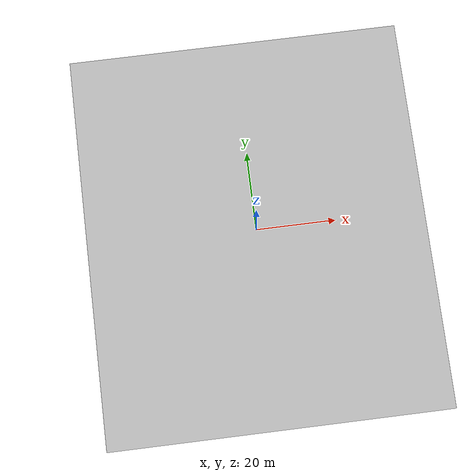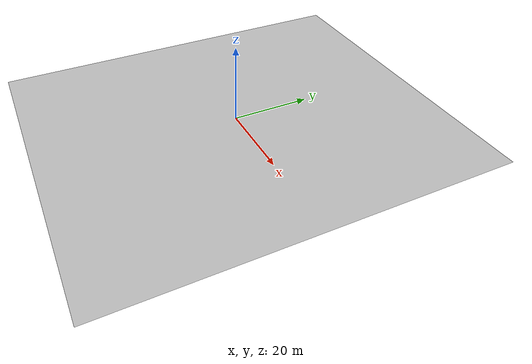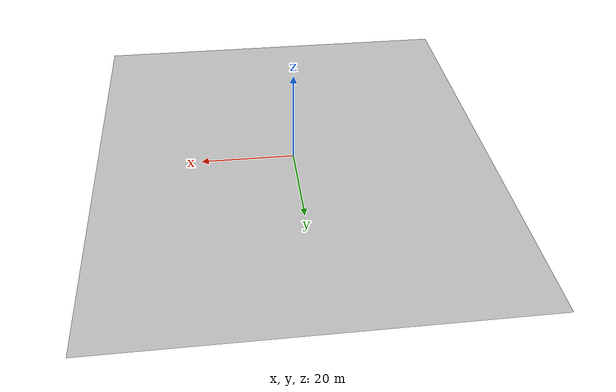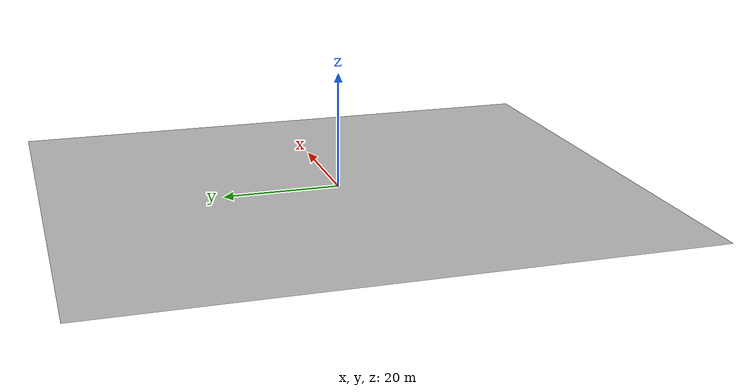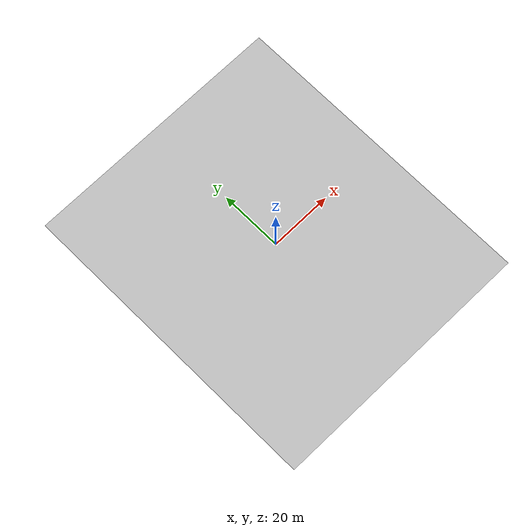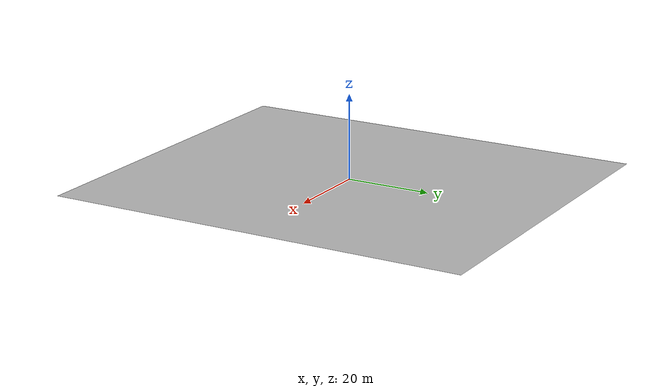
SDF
<?xml version="1.0" ?>
<sdf version="1.6" xmlns:xacro="http://www.ros.org/wiki/xacro">
	<world name="default">
    		<spherical_coordinates>
      			<surface_model>EARTH_WGS84</surface_model>
      			<world_frame_orientation>ENU</world_frame_orientation>
      			<latitude_deg>42.67</latitude_deg>
      			<longitude_deg>-83.22</longitude_deg>
      			<elevation>0</elevation>
      			<heading_deg>0</heading_deg>
    		</spherical_coordinates>
    		<model name="terrain">
        	<pose>0 0 0 0 0 0</pose>
        	<static>true</static>
        	<link name="body">
        	    <visual name="visual">
        	        <geometry>
        	            <mesh>
        	                <uri>model://terrain/media/course_1.dae</uri>
        	            </mesh>
        	        </geometry>
        	        <material>
        	            <script>
        	                <uri>model://terrain/media/scripts/terrain.material</uri>
        	                <uri>model://terrain/media/textures/texture.png</uri>
				<name>TerrainMat</name>
        	            </script>
        	        </material>
        	    </visual>
        	    <collision name="collision">
        	        <geometry>
        	            <mesh>
        	                <uri>model://terrain/media/course_1.dae</uri>
        	            </mesh>
        	        </geometry>
        	    </collision>
        	</link>
	    </model>
	</world>
</sdf>
